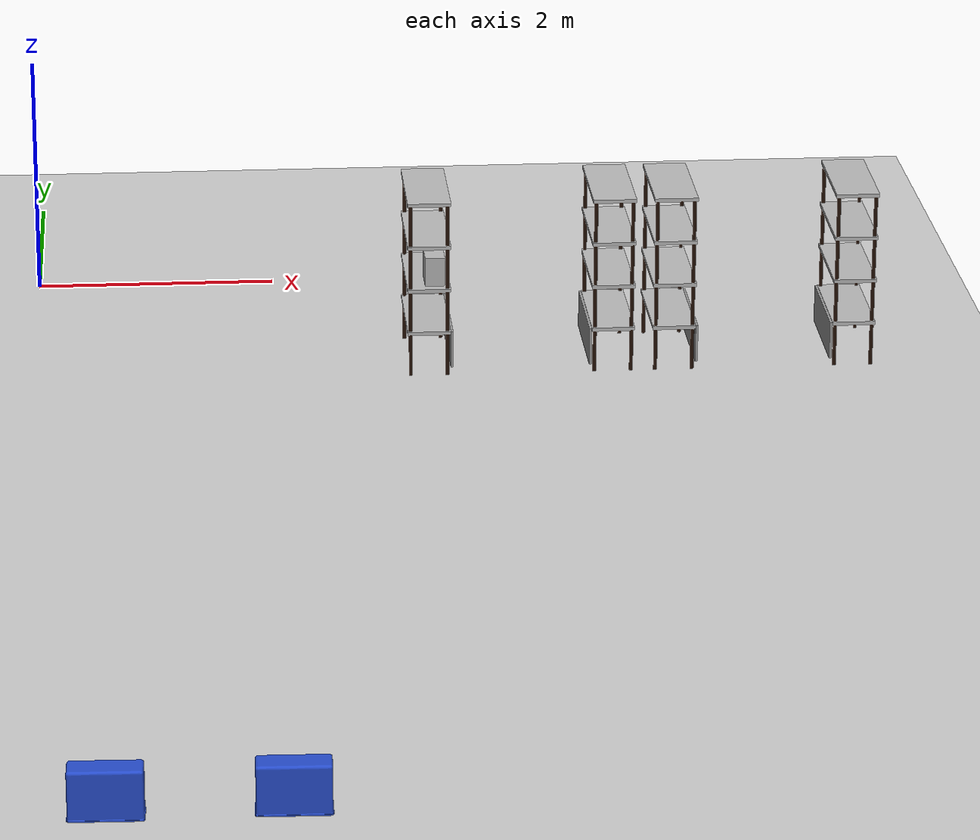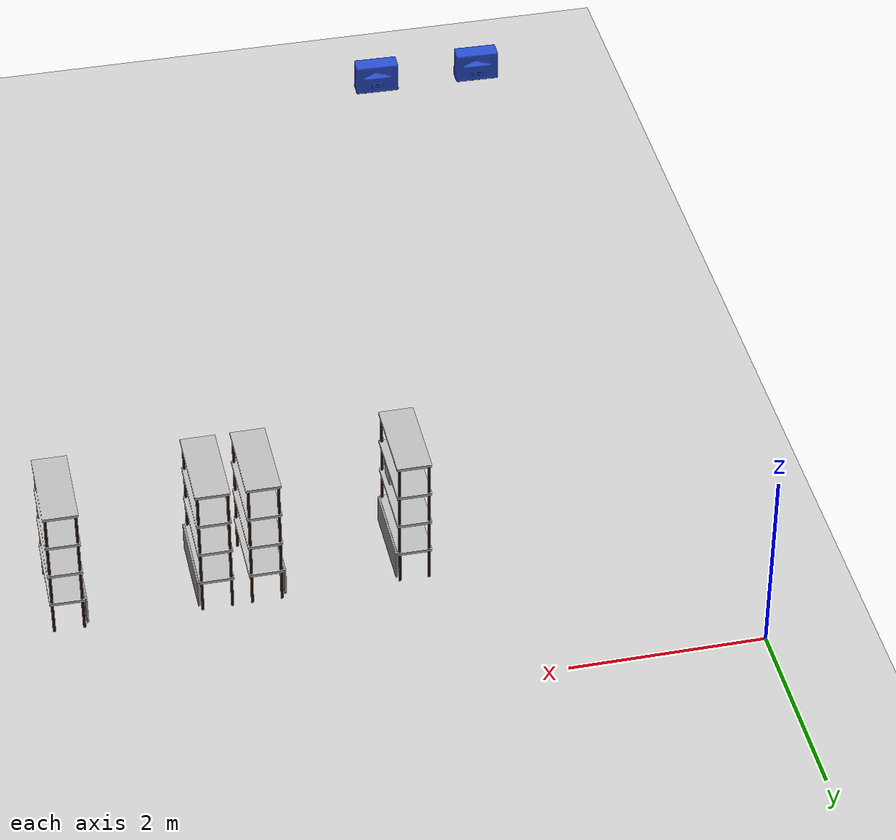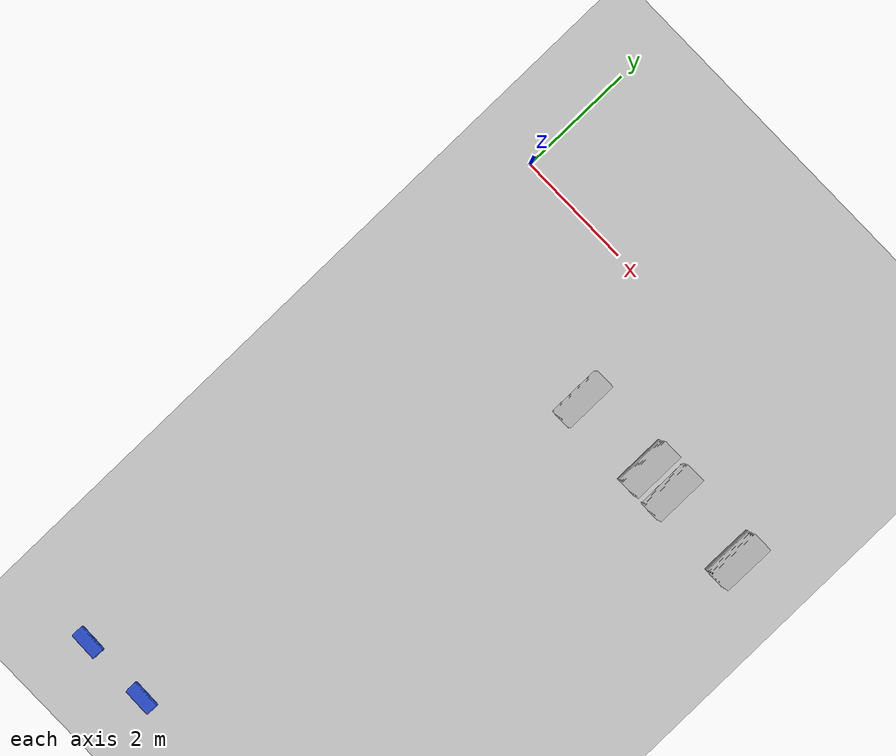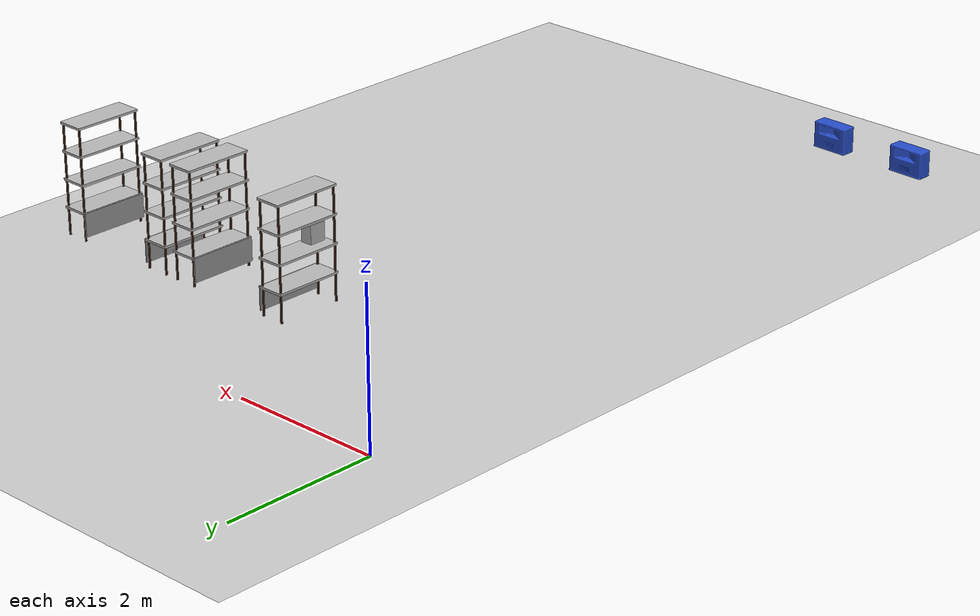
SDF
<sdf version="1.7">
 <world name="default">
  <model name="ground_plane">
   <static>1</static>
   <link name="link">
    <collision name="collision">
     <geometry><plane><normal>0 0 1</normal><size>100 100</size></plane></geometry>
     <surface><friction><ode><mu>100</mu><mu2>50</mu2></ode></friction></surface>
    </collision>
    <visual name="visual">
     <cast_shadows>0</cast_shadows>
     <geometry><plane><normal>0 0 1</normal><size>100 100</size></plane></geometry>
     <material>
      <script><uri>file://media/materials/scripts/gazebo.material</uri><name>Gazebo/Grey</name></script>
     </material>
    </visual>
   </link>
  </model>
  <model name="rack">
   <link name="link">
    <inertial>
     <mass>0.1</mass>
     <inertia><ixx>0.01857</ixx><ixy>0</ixy><ixz>0</ixz><iyy>0.015598</iyy><iyz>0</iyz><izz>0.00305</izz></inertia>
    </inertial>
    <visual name="visual1">
     <cast_shadows>0</cast_shadows>
     <geometry><mesh><uri>model://rack/meshes/rack.dae</uri></mesh></geometry>
     <material>
      <shader type="pixel"><normal_map>__default__</normal_map></shader>
      <emissive>0 0 0 1</emissive>
     </material>
    </visual>
    <visual name="visual_2">
     <cast_shadows>0</cast_shadows>
     <geometry><box><size>0.02 0.9 0.31</size></box></geometry>
     <material>
      <lighting>1</lighting>
      <script><uri>file://media/materials/scripts/gazebo.material</uri><name>Gazebo/Grey</name></script>
      <shader type="pixel"><normal_map>__default__</normal_map></shader>
      <ambient>0.3 0.3 0.3 1</ambient>
      <diffuse>0.7 0.7 0.7 1</diffuse>
      <specular>0.01 0.01 0.01 1</specular>
      <emissive>0 0 0 1</emissive>
     </material>
     <pose>-0.185 0 0.22 0 -0 0</pose>
    </visual>
    <collision name="collision_7">
     <pose>0 0 0.36 0 1.57 1.57</pose>
     <geometry><box><size>0.05 0.35 0.91</size></box></geometry>
     <surface>
      <friction>
       <ode><mu>1</mu><mu2>1</mu2><fdir1>0 0 0</fdir1><slip1>0</slip1><slip2>0</slip2></ode>
       <torsional>
        <coefficient>1</coefficient>
        <patch_radius>0</patch_radius>
        <surface_radius>0</surface_radius>
        <use_patch_radius>1</use_patch_radius>
        <ode><slip>0</slip></ode>
       </torsional>
      </friction>
      <bounce><restitution_coefficient>0</restitution_coefficient><threshold>1e+06</threshold></bounce>
      <contact>
       <collide_without_contact>0</collide_without_contact>
       <collide_without_contact_bitmask>1</collide_without_contact_bitmask>
       <collide_bitmask>1</collide_bitmask>
       <ode>
        <soft_cfm>0</soft_cfm>
        <soft_erp>0.2</soft_erp>
        <kp>1e+15</kp>
        <kd>1e+13</kd>
        <max_vel>0.01</max_vel>
        <min_depth>0</min_depth>
       </ode>
       <bullet>
        <split_impulse>1</split_impulse>
        <split_impulse_penetration_threshold>-0.01</split_impulse_penetration_threshold>
        <soft_cfm>0</soft_cfm>
        <soft_erp>0.2</soft_erp>
        <kp>1e+13</kp>
        <kd>1</kd>
       </bullet>
      </contact>
     </surface>
    </collision>
    <collision name="collision_6">
     <pose>0 0 0.725 0 1.57 1.57</pose>
     <geometry><box><size>0.05 0.35 0.91</size></box></geometry>
     <surface>
      <friction>
       <ode><mu>1</mu><mu2>1</mu2><fdir1>0 0 0</fdir1><slip1>0</slip1><slip2>0</slip2></ode>
       <torsional>
        <coefficient>1</coefficient>
        <patch_radius>0</patch_radius>
        <surface_radius>0</surface_radius>
        <use_patch_radius>1</use_patch_radius>
        <ode><slip>0</slip></ode>
       </torsional>
      </friction>
      <bounce><restitution_coefficient>0</restitution_coefficient><threshold>1e+06</threshold></bounce>
      <contact>
       <collide_without_contact>0</collide_without_contact>
       <collide_without_contact_bitmask>1</collide_without_contact_bitmask>
       <collide_bitmask>1</collide_bitmask>
       <ode>
        <soft_cfm>0</soft_cfm>
        <soft_erp>0.2</soft_erp>
        <kp>1e+15</kp>
        <kd>1e+13</kd>
        <max_vel>0.01</max_vel>
        <min_depth>0</min_depth>
       </ode>
       <bullet>
        <split_impulse>1</split_impulse>
        <split_impulse_penetration_threshold>-0.01</split_impulse_penetration_threshold>
        <soft_cfm>0</soft_cfm>
        <soft_erp>0.2</soft_erp>
        <kp>1e+13</kp>
        <kd>1</kd>
       </bullet>
      </contact>
     </surface>
    </collision>
    <collision name="collision_5">
     <pose>0 0 1.09 0 1.57 1.57</pose>
     <geometry><box><size>0.05 0.35 0.91</size></box></geometry>
     <surface>
      <friction>
       <ode><mu>1</mu><mu2>1</mu2><fdir1>0 0 0</fdir1><slip1>0</slip1><slip2>0</slip2></ode>
       <torsional>
        <coefficient>1</coefficient>
        <patch_radius>0</patch_radius>
        <surface_radius>0</surface_radius>
        <use_patch_radius>1</use_patch_radius>
        <ode><slip>0</slip></ode>
       </torsional>
      </friction>
      <bounce><restitution_coefficient>0</restitution_coefficient><threshold>1e+06</threshold></bounce>
      <contact>
       <collide_without_contact>0</collide_without_contact>
       <collide_without_contact_bitmask>1</collide_without_contact_bitmask>
       <collide_bitmask>1</collide_bitmask>
       <ode>
        <soft_cfm>0</soft_cfm>
        <soft_erp>0.2</soft_erp>
        <kp>1e+15</kp>
        <kd>1e+13</kd>
        <max_vel>0.01</max_vel>
        <min_depth>0</min_depth>
       </ode>
       <bullet>
        <split_impulse>1</split_impulse>
        <split_impulse_penetration_threshold>-0.01</split_impulse_penetration_threshold>
        <soft_cfm>0</soft_cfm>
        <soft_erp>0.2</soft_erp>
        <kp>1e+13</kp>
        <kd>1</kd>
       </bullet>
      </contact>
     </surface>
    </collision>
    <collision name="collision_3">
     <pose>0 0 1.455 0 1.57 1.57</pose>
     <geometry><box><size>0.05 0.35 0.91</size></box></geometry>
     <surface>
      <friction>
       <ode><mu>1</mu><mu2>1</mu2><fdir1>0 0 0</fdir1><slip1>0</slip1><slip2>0</slip2></ode>
       <torsional>
        <coefficient>1</coefficient>
        <patch_radius>0</patch_radius>
        <surface_radius>0</surface_radius>
        <use_patch_radius>1</use_patch_radius>
        <ode><slip>0</slip></ode>
       </torsional>
      </friction>
      <bounce><restitution_coefficient>0</restitution_coefficient><threshold>1e+06</threshold></bounce>
      <contact>
       <collide_without_contact>0</collide_without_contact>
       <collide_without_contact_bitmask>1</collide_without_contact_bitmask>
       <collide_bitmask>1</collide_bitmask>
       <ode>
        <soft_cfm>0</soft_cfm>
        <soft_erp>0.2</soft_erp>
        <kp>1e+15</kp>
        <kd>1e+13</kd>
        <max_vel>0.01</max_vel>
        <min_depth>0</min_depth>
       </ode>
       <bullet>
        <split_impulse>1</split_impulse>
        <split_impulse_penetration_threshold>-0.01</split_impulse_penetration_threshold>
        <soft_cfm>0</soft_cfm>
        <soft_erp>0.2</soft_erp>
        <kp>1e+13</kp>
        <kd>1</kd>
       </bullet>
      </contact>
     </surface>
    </collision>
    <collision name="collision_1">
     <pose>0 0.43 0.73 0 -0 1.57</pose>
     <geometry><box><size>0.05 0.36 1.46</size></box></geometry>
     <surface>
      <friction>
       <ode><mu>1</mu><mu2>1</mu2><fdir1>0 0 0</fdir1><slip1>0</slip1><slip2>0</slip2></ode>
       <torsional>
        <coefficient>1</coefficient>
        <patch_radius>0</patch_radius>
        <surface_radius>0</surface_radius>
        <use_patch_radius>1</use_patch_radius>
        <ode><slip>0</slip></ode>
       </torsional>
      </friction>
      <bounce><restitution_coefficient>0</restitution_coefficient><threshold>1e+06</threshold></bounce>
      <contact>
       <collide_without_contact>0</collide_without_contact>
       <collide_without_contact_bitmask>1</collide_without_contact_bitmask>
       <collide_bitmask>1</collide_bitmask>
       <ode>
        <soft_cfm>0</soft_cfm>
        <soft_erp>0.2</soft_erp>
        <kp>1e+15</kp>
        <kd>1e+13</kd>
        <max_vel>0.01</max_vel>
        <min_depth>0</min_depth>
       </ode>
       <bullet>
        <split_impulse>1</split_impulse>
        <split_impulse_penetration_threshold>-0.01</split_impulse_penetration_threshold>
        <soft_cfm>0</soft_cfm>
        <soft_erp>0.2</soft_erp>
        <kp>1e+13</kp>
        <kd>1</kd>
       </bullet>
      </contact>
     </surface>
    </collision>
    <collision name="collision_2">
     <pose>0 -0.43 0.73 0 -0 1.57</pose>
     <geometry><box><size>0.05 0.36 1.46</size></box></geometry>
     <surface>
      <friction>
       <ode><mu>1</mu><mu2>1</mu2><fdir1>0 0 0</fdir1><slip1>0</slip1><slip2>0</slip2></ode>
       <torsional>
        <coefficient>1</coefficient>
        <patch_radius>0</patch_radius>
        <surface_radius>0</surface_radius>
        <use_patch_radius>1</use_patch_radius>
        <ode><slip>0</slip></ode>
       </torsional>
      </friction>
      <bounce><restitution_coefficient>0</restitution_coefficient><threshold>1e+06</threshold></bounce>
      <contact>
       <collide_without_contact>0</collide_without_contact>
       <collide_without_contact_bitmask>1</collide_without_contact_bitmask>
       <collide_bitmask>1</collide_bitmask>
       <ode>
        <soft_cfm>0</soft_cfm>
        <soft_erp>0.2</soft_erp>
        <kp>1e+15</kp>
        <kd>1e+13</kd>
        <max_vel>0.01</max_vel>
        <min_depth>0</min_depth>
       </ode>
       <bullet>
        <split_impulse>1</split_impulse>
        <split_impulse_penetration_threshold>-0.01</split_impulse_penetration_threshold>
        <soft_cfm>0</soft_cfm>
        <soft_erp>0.2</soft_erp>
        <kp>1e+13</kp>
        <kd>1</kd>
       </bullet>
      </contact>
     </surface>
    </collision>
    <collision name="collision">
     <pose>-0.185 0 0.22 0 -0 0</pose>
     <geometry><box><size>0.02 0.9 0.31</size></box></geometry>
     <surface>
      <friction>
       <ode><mu>1</mu><mu2>1</mu2><fdir1>0 0 0</fdir1><slip1>0</slip1><slip2>0</slip2></ode>
       <torsional>
        <coefficient>1</coefficient>
        <patch_radius>0</patch_radius>
        <surface_radius>0</surface_radius>
        <use_patch_radius>1</use_patch_radius>
        <ode><slip>0</slip></ode>
       </torsional>
      </friction>
      <bounce><restitution_coefficient>0</restitution_coefficient><threshold>1e+06</threshold></bounce>
      <contact>
       <collide_without_contact>0</collide_without_contact>
       <collide_without_contact_bitmask>1</collide_without_contact_bitmask>
       <collide_bitmask>1</collide_bitmask>
       <ode>
        <soft_cfm>0</soft_cfm>
        <soft_erp>0.2</soft_erp>
        <kp>1e+15</kp>
        <kd>1e+13</kd>
        <max_vel>0.01</max_vel>
        <min_depth>0</min_depth>
       </ode>
       <bullet>
        <split_impulse>1</split_impulse>
        <split_impulse_penetration_threshold>-0.01</split_impulse_penetration_threshold>
        <soft_cfm>0</soft_cfm>
        <soft_erp>0.2</soft_erp>
        <kp>1e+13</kp>
        <kd>1</kd>
       </bullet>
      </contact>
     </surface>
    </collision>
   </link>
   <static>0</static>
   <pose>6.67799 -1.99962 0.033266 -0.001943 0.000242 -0.010784</pose>
  </model>
  <model name="rack_6">
   <link name="link">
    <inertial>
     <mass>0.1</mass>
     <inertia><ixx>0.01857</ixx><ixy>0</ixy><ixz>0</ixz><iyy>0.015598</iyy><iyz>0</iyz><izz>0.00305</izz></inertia>
    </inertial>
    <visual name="visual1">
     <cast_shadows>0</cast_shadows>
     <geometry><mesh><uri>model://rack/meshes/rack.dae</uri></mesh></geometry>
     <material>
      <shader type="pixel"><normal_map>__default__</normal_map></shader>
      <emissive>0 0 0 1</emissive>
     </material>
    </visual>
    <visual name="visual_2">
     <cast_shadows>0</cast_shadows>
     <geometry><box><size>0.02 0.9 0.31</size></box></geometry>
     <material>
      <lighting>1</lighting>
      <script><uri>file://media/materials/scripts/gazebo.material</uri><name>Gazebo/Grey</name></script>
      <shader type="pixel"><normal_map>__default__</normal_map></shader>
      <ambient>0.3 0.3 0.3 1</ambient>
      <diffuse>0.7 0.7 0.7 1</diffuse>
      <specular>0.01 0.01 0.01 1</specular>
      <emissive>0 0 0 1</emissive>
     </material>
     <pose>-0.185 0 0.22 0 -0 0</pose>
    </visual>
    <collision name="collision_7">
     <pose>0 0 0.36 0 1.57 1.57</pose>
     <geometry><box><size>0.05 0.35 0.91</size></box></geometry>
     <surface>
      <friction>
       <ode><mu>1</mu><mu2>1</mu2><fdir1>0 0 0</fdir1><slip1>0</slip1><slip2>0</slip2></ode>
       <torsional>
        <coefficient>1</coefficient>
        <patch_radius>0</patch_radius>
        <surface_radius>0</surface_radius>
        <use_patch_radius>1</use_patch_radius>
        <ode><slip>0</slip></ode>
       </torsional>
      </friction>
      <bounce><restitution_coefficient>0</restitution_coefficient><threshold>1e+06</threshold></bounce>
      <contact>
       <collide_without_contact>0</collide_without_contact>
       <collide_without_contact_bitmask>1</collide_without_contact_bitmask>
       <collide_bitmask>1</collide_bitmask>
       <ode>
        <soft_cfm>0</soft_cfm>
        <soft_erp>0.2</soft_erp>
        <kp>1e+15</kp>
        <kd>1e+13</kd>
        <max_vel>0.01</max_vel>
        <min_depth>0</min_depth>
       </ode>
       <bullet>
        <split_impulse>1</split_impulse>
        <split_impulse_penetration_threshold>-0.01</split_impulse_penetration_threshold>
        <soft_cfm>0</soft_cfm>
        <soft_erp>0.2</soft_erp>
        <kp>1e+13</kp>
        <kd>1</kd>
       </bullet>
      </contact>
     </surface>
    </collision>
    <collision name="collision_6">
     <pose>0 0 0.725 0 1.57 1.57</pose>
     <geometry><box><size>0.05 0.35 0.91</size></box></geometry>
     <surface>
      <friction>
       <ode><mu>1</mu><mu2>1</mu2><fdir1>0 0 0</fdir1><slip1>0</slip1><slip2>0</slip2></ode>
       <torsional>
        <coefficient>1</coefficient>
        <patch_radius>0</patch_radius>
        <surface_radius>0</surface_radius>
        <use_patch_radius>1</use_patch_radius>
        <ode><slip>0</slip></ode>
       </torsional>
      </friction>
      <bounce><restitution_coefficient>0</restitution_coefficient><threshold>1e+06</threshold></bounce>
      <contact>
       <collide_without_contact>0</collide_without_contact>
       <collide_without_contact_bitmask>1</collide_without_contact_bitmask>
       <collide_bitmask>1</collide_bitmask>
       <ode>
        <soft_cfm>0</soft_cfm>
        <soft_erp>0.2</soft_erp>
        <kp>1e+15</kp>
        <kd>1e+13</kd>
        <max_vel>0.01</max_vel>
        <min_depth>0</min_depth>
       </ode>
       <bullet>
        <split_impulse>1</split_impulse>
        <split_impulse_penetration_threshold>-0.01</split_impulse_penetration_threshold>
        <soft_cfm>0</soft_cfm>
        <soft_erp>0.2</soft_erp>
        <kp>1e+13</kp>
        <kd>1</kd>
       </bullet>
      </contact>
     </surface>
    </collision>
    <collision name="collision_5">
     <pose>0 0 1.09 0 1.57 1.57</pose>
     <geometry><box><size>0.05 0.35 0.91</size></box></geometry>
     <surface>
      <friction>
       <ode><mu>1</mu><mu2>1</mu2><fdir1>0 0 0</fdir1><slip1>0</slip1><slip2>0</slip2></ode>
       <torsional>
        <coefficient>1</coefficient>
        <patch_radius>0</patch_radius>
        <surface_radius>0</surface_radius>
        <use_patch_radius>1</use_patch_radius>
        <ode><slip>0</slip></ode>
       </torsional>
      </friction>
      <bounce><restitution_coefficient>0</restitution_coefficient><threshold>1e+06</threshold></bounce>
      <contact>
       <collide_without_contact>0</collide_without_contact>
       <collide_without_contact_bitmask>1</collide_without_contact_bitmask>
       <collide_bitmask>1</collide_bitmask>
       <ode>
        <soft_cfm>0</soft_cfm>
        <soft_erp>0.2</soft_erp>
        <kp>1e+15</kp>
        <kd>1e+13</kd>
        <max_vel>0.01</max_vel>
        <min_depth>0</min_depth>
       </ode>
       <bullet>
        <split_impulse>1</split_impulse>
        <split_impulse_penetration_threshold>-0.01</split_impulse_penetration_threshold>
        <soft_cfm>0</soft_cfm>
        <soft_erp>0.2</soft_erp>
        <kp>1e+13</kp>
        <kd>1</kd>
       </bullet>
      </contact>
     </surface>
    </collision>
    <collision name="collision_3">
     <pose>0 0 1.455 0 1.57 1.57</pose>
     <geometry><box><size>0.05 0.35 0.91</size></box></geometry>
     <surface>
      <friction>
       <ode><mu>1</mu><mu2>1</mu2><fdir1>0 0 0</fdir1><slip1>0</slip1><slip2>0</slip2></ode>
       <torsional>
        <coefficient>1</coefficient>
        <patch_radius>0</patch_radius>
        <surface_radius>0</surface_radius>
        <use_patch_radius>1</use_patch_radius>
        <ode><slip>0</slip></ode>
       </torsional>
      </friction>
      <bounce><restitution_coefficient>0</restitution_coefficient><threshold>1e+06</threshold></bounce>
      <contact>
       <collide_without_contact>0</collide_without_contact>
       <collide_without_contact_bitmask>1</collide_without_contact_bitmask>
       <collide_bitmask>1</collide_bitmask>
       <ode>
        <soft_cfm>0</soft_cfm>
        <soft_erp>0.2</soft_erp>
        <kp>1e+15</kp>
        <kd>1e+13</kd>
        <max_vel>0.01</max_vel>
        <min_depth>0</min_depth>
       </ode>
       <bullet>
        <split_impulse>1</split_impulse>
        <split_impulse_penetration_threshold>-0.01</split_impulse_penetration_threshold>
        <soft_cfm>0</soft_cfm>
        <soft_erp>0.2</soft_erp>
        <kp>1e+13</kp>
        <kd>1</kd>
       </bullet>
      </contact>
     </surface>
    </collision>
    <collision name="collision_1">
     <pose>0 0.43 0.73 0 -0 1.57</pose>
     <geometry><box><size>0.05 0.36 1.46</size></box></geometry>
     <surface>
      <friction>
       <ode><mu>1</mu><mu2>1</mu2><fdir1>0 0 0</fdir1><slip1>0</slip1><slip2>0</slip2></ode>
       <torsional>
        <coefficient>1</coefficient>
        <patch_radius>0</patch_radius>
        <surface_radius>0</surface_radius>
        <use_patch_radius>1</use_patch_radius>
        <ode><slip>0</slip></ode>
       </torsional>
      </friction>
      <bounce><restitution_coefficient>0</restitution_coefficient><threshold>1e+06</threshold></bounce>
      <contact>
       <collide_without_contact>0</collide_without_contact>
       <collide_without_contact_bitmask>1</collide_without_contact_bitmask>
       <collide_bitmask>1</collide_bitmask>
       <ode>
        <soft_cfm>0</soft_cfm>
        <soft_erp>0.2</soft_erp>
        <kp>1e+15</kp>
        <kd>1e+13</kd>
        <max_vel>0.01</max_vel>
        <min_depth>0</min_depth>
       </ode>
       <bullet>
        <split_impulse>1</split_impulse>
        <split_impulse_penetration_threshold>-0.01</split_impulse_penetration_threshold>
        <soft_cfm>0</soft_cfm>
        <soft_erp>0.2</soft_erp>
        <kp>1e+13</kp>
        <kd>1</kd>
       </bullet>
      </contact>
     </surface>
    </collision>
    <collision name="collision_2">
     <pose>0 -0.43 0.73 0 -0 1.57</pose>
     <geometry><box><size>0.05 0.36 1.46</size></box></geometry>
     <surface>
      <friction>
       <ode><mu>1</mu><mu2>1</mu2><fdir1>0 0 0</fdir1><slip1>0</slip1><slip2>0</slip2></ode>
       <torsional>
        <coefficient>1</coefficient>
        <patch_radius>0</patch_radius>
        <surface_radius>0</surface_radius>
        <use_patch_radius>1</use_patch_radius>
        <ode><slip>0</slip></ode>
       </torsional>
      </friction>
      <bounce><restitution_coefficient>0</restitution_coefficient><threshold>1e+06</threshold></bounce>
      <contact>
       <collide_without_contact>0</collide_without_contact>
       <collide_without_contact_bitmask>1</collide_without_contact_bitmask>
       <collide_bitmask>1</collide_bitmask>
       <ode>
        <soft_cfm>0</soft_cfm>
        <soft_erp>0.2</soft_erp>
        <kp>1e+15</kp>
        <kd>1e+13</kd>
        <max_vel>0.01</max_vel>
        <min_depth>0</min_depth>
       </ode>
       <bullet>
        <split_impulse>1</split_impulse>
        <split_impulse_penetration_threshold>-0.01</split_impulse_penetration_threshold>
        <soft_cfm>0</soft_cfm>
        <soft_erp>0.2</soft_erp>
        <kp>1e+13</kp>
        <kd>1</kd>
       </bullet>
      </contact>
     </surface>
    </collision>
    <collision name="collision">
     <pose>-0.185 0 0.22 0 -0 0</pose>
     <geometry><box><size>0.02 0.9 0.31</size></box></geometry>
     <surface>
      <friction>
       <ode><mu>1</mu><mu2>1</mu2><fdir1>0 0 0</fdir1><slip1>0</slip1><slip2>0</slip2></ode>
       <torsional>
        <coefficient>1</coefficient>
        <patch_radius>0</patch_radius>
        <surface_radius>0</surface_radius>
        <use_patch_radius>1</use_patch_radius>
        <ode><slip>0</slip></ode>
       </torsional>
      </friction>
      <bounce><restitution_coefficient>0</restitution_coefficient><threshold>1e+06</threshold></bounce>
      <contact>
       <collide_without_contact>0</collide_without_contact>
       <collide_without_contact_bitmask>1</collide_without_contact_bitmask>
       <collide_bitmask>1</collide_bitmask>
       <ode>
        <soft_cfm>0</soft_cfm>
        <soft_erp>0.2</soft_erp>
        <kp>1e+15</kp>
        <kd>1e+13</kd>
        <max_vel>0.01</max_vel>
        <min_depth>0</min_depth>
       </ode>
       <bullet>
        <split_impulse>1</split_impulse>
        <split_impulse_penetration_threshold>-0.01</split_impulse_penetration_threshold>
        <soft_cfm>0</soft_cfm>
        <soft_erp>0.2</soft_erp>
        <kp>1e+13</kp>
        <kd>1</kd>
       </bullet>
      </contact>
     </surface>
    </collision>
   </link>
   <static>0</static>
   <pose>5.2 -2 0.034223 0 -0 3.14</pose>
  </model>
  <model name="rack_10">
   <link name="link">
    <inertial>
     <mass>0.1</mass>
     <inertia><ixx>0.01857</ixx><ixy>0</ixy><ixz>0</ixz><iyy>0.015598</iyy><iyz>0</iyz><izz>0.00305</izz></inertia>
    </inertial>
    <visual name="visual1">
     <cast_shadows>0</cast_shadows>
     <geometry><mesh><uri>model://rack/meshes/rack.dae</uri></mesh></geometry>
     <material>
      <shader type="pixel"><normal_map>__default__</normal_map></shader>
      <emissive>0 0 0 1</emissive>
     </material>
    </visual>
    <visual name="visual_2">
     <cast_shadows>0</cast_shadows>
     <geometry><box><size>0.02 0.9 0.31</size></box></geometry>
     <material>
      <lighting>1</lighting>
      <script><uri>file://media/materials/scripts/gazebo.material</uri><name>Gazebo/Grey</name></script>
      <shader type="pixel"><normal_map>__default__</normal_map></shader>
      <ambient>0.3 0.3 0.3 1</ambient>
      <diffuse>0.7 0.7 0.7 1</diffuse>
      <specular>0.01 0.01 0.01 1</specular>
      <emissive>0 0 0 1</emissive>
     </material>
     <pose>-0.185 0 0.22 0 -0 0</pose>
    </visual>
    <collision name="collision_7">
     <pose>0 0 0.36 0 1.57 1.57</pose>
     <geometry><box><size>0.05 0.35 0.91</size></box></geometry>
     <surface>
      <friction>
       <ode><mu>1</mu><mu2>1</mu2><fdir1>0 0 0</fdir1><slip1>0</slip1><slip2>0</slip2></ode>
       <torsional>
        <coefficient>1</coefficient>
        <patch_radius>0</patch_radius>
        <surface_radius>0</surface_radius>
        <use_patch_radius>1</use_patch_radius>
        <ode><slip>0</slip></ode>
       </torsional>
      </friction>
      <bounce><restitution_coefficient>0</restitution_coefficient><threshold>1e+06</threshold></bounce>
      <contact>
       <collide_without_contact>0</collide_without_contact>
       <collide_without_contact_bitmask>1</collide_without_contact_bitmask>
       <collide_bitmask>1</collide_bitmask>
       <ode>
        <soft_cfm>0</soft_cfm>
        <soft_erp>0.2</soft_erp>
        <kp>1e+15</kp>
        <kd>1e+13</kd>
        <max_vel>0.01</max_vel>
        <min_depth>0</min_depth>
       </ode>
       <bullet>
        <split_impulse>1</split_impulse>
        <split_impulse_penetration_threshold>-0.01</split_impulse_penetration_threshold>
        <soft_cfm>0</soft_cfm>
        <soft_erp>0.2</soft_erp>
        <kp>1e+13</kp>
        <kd>1</kd>
       </bullet>
      </contact>
     </surface>
    </collision>
    <collision name="collision_6">
     <pose>0 0 0.725 0 1.57 1.57</pose>
     <geometry><box><size>0.05 0.35 0.91</size></box></geometry>
     <surface>
      <friction>
       <ode><mu>1</mu><mu2>1</mu2><fdir1>0 0 0</fdir1><slip1>0</slip1><slip2>0</slip2></ode>
       <torsional>
        <coefficient>1</coefficient>
        <patch_radius>0</patch_radius>
        <surface_radius>0</surface_radius>
        <use_patch_radius>1</use_patch_radius>
        <ode><slip>0</slip></ode>
       </torsional>
      </friction>
      <bounce><restitution_coefficient>0</restitution_coefficient><threshold>1e+06</threshold></bounce>
      <contact>
       <collide_without_contact>0</collide_without_contact>
       <collide_without_contact_bitmask>1</collide_without_contact_bitmask>
       <collide_bitmask>1</collide_bitmask>
       <ode>
        <soft_cfm>0</soft_cfm>
        <soft_erp>0.2</soft_erp>
        <kp>1e+15</kp>
        <kd>1e+13</kd>
        <max_vel>0.01</max_vel>
        <min_depth>0</min_depth>
       </ode>
       <bullet>
        <split_impulse>1</split_impulse>
        <split_impulse_penetration_threshold>-0.01</split_impulse_penetration_threshold>
        <soft_cfm>0</soft_cfm>
        <soft_erp>0.2</soft_erp>
        <kp>1e+13</kp>
        <kd>1</kd>
       </bullet>
      </contact>
     </surface>
    </collision>
    <collision name="collision_5">
     <pose>0 0 1.09 0 1.57 1.57</pose>
     <geometry><box><size>0.05 0.35 0.91</size></box></geometry>
     <surface>
      <friction>
       <ode><mu>1</mu><mu2>1</mu2><fdir1>0 0 0</fdir1><slip1>0</slip1><slip2>0</slip2></ode>
       <torsional>
        <coefficient>1</coefficient>
        <patch_radius>0</patch_radius>
        <surface_radius>0</surface_radius>
        <use_patch_radius>1</use_patch_radius>
        <ode><slip>0</slip></ode>
       </torsional>
      </friction>
      <bounce><restitution_coefficient>0</restitution_coefficient><threshold>1e+06</threshold></bounce>
      <contact>
       <collide_without_contact>0</collide_without_contact>
       <collide_without_contact_bitmask>1</collide_without_contact_bitmask>
       <collide_bitmask>1</collide_bitmask>
       <ode>
        <soft_cfm>0</soft_cfm>
        <soft_erp>0.2</soft_erp>
        <kp>1e+15</kp>
        <kd>1e+13</kd>
        <max_vel>0.01</max_vel>
        <min_depth>0</min_depth>
       </ode>
       <bullet>
        <split_impulse>1</split_impulse>
        <split_impulse_penetration_threshold>-0.01</split_impulse_penetration_threshold>
        <soft_cfm>0</soft_cfm>
        <soft_erp>0.2</soft_erp>
        <kp>1e+13</kp>
        <kd>1</kd>
       </bullet>
      </contact>
     </surface>
    </collision>
    <collision name="collision_3">
     <pose>0 0 1.455 0 1.57 1.57</pose>
     <geometry><box><size>0.05 0.35 0.91</size></box></geometry>
     <surface>
      <friction>
       <ode><mu>1</mu><mu2>1</mu2><fdir1>0 0 0</fdir1><slip1>0</slip1><slip2>0</slip2></ode>
       <torsional>
        <coefficient>1</coefficient>
        <patch_radius>0</patch_radius>
        <surface_radius>0</surface_radius>
        <use_patch_radius>1</use_patch_radius>
        <ode><slip>0</slip></ode>
       </torsional>
      </friction>
      <bounce><restitution_coefficient>0</restitution_coefficient><threshold>1e+06</threshold></bounce>
      <contact>
       <collide_without_contact>0</collide_without_contact>
       <collide_without_contact_bitmask>1</collide_without_contact_bitmask>
       <collide_bitmask>1</collide_bitmask>
       <ode>
        <soft_cfm>0</soft_cfm>
        <soft_erp>0.2</soft_erp>
        <kp>1e+15</kp>
        <kd>1e+13</kd>
        <max_vel>0.01</max_vel>
        <min_depth>0</min_depth>
       </ode>
       <bullet>
        <split_impulse>1</split_impulse>
        <split_impulse_penetration_threshold>-0.01</split_impulse_penetration_threshold>
        <soft_cfm>0</soft_cfm>
        <soft_erp>0.2</soft_erp>
        <kp>1e+13</kp>
        <kd>1</kd>
       </bullet>
      </contact>
     </surface>
    </collision>
    <collision name="collision_1">
     <pose>0 0.43 0.73 0 -0 1.57</pose>
     <geometry><box><size>0.05 0.36 1.46</size></box></geometry>
     <surface>
      <friction>
       <ode><mu>1</mu><mu2>1</mu2><fdir1>0 0 0</fdir1><slip1>0</slip1><slip2>0</slip2></ode>
       <torsional>
        <coefficient>1</coefficient>
        <patch_radius>0</patch_radius>
        <surface_radius>0</surface_radius>
        <use_patch_radius>1</use_patch_radius>
        <ode><slip>0</slip></ode>
       </torsional>
      </friction>
      <bounce><restitution_coefficient>0</restitution_coefficient><threshold>1e+06</threshold></bounce>
      <contact>
       <collide_without_contact>0</collide_without_contact>
       <collide_without_contact_bitmask>1</collide_without_contact_bitmask>
       <collide_bitmask>1</collide_bitmask>
       <ode>
        <soft_cfm>0</soft_cfm>
        <soft_erp>0.2</soft_erp>
        <kp>1e+15</kp>
        <kd>1e+13</kd>
        <max_vel>0.01</max_vel>
        <min_depth>0</min_depth>
       </ode>
       <bullet>
        <split_impulse>1</split_impulse>
        <split_impulse_penetration_threshold>-0.01</split_impulse_penetration_threshold>
        <soft_cfm>0</soft_cfm>
        <soft_erp>0.2</soft_erp>
        <kp>1e+13</kp>
        <kd>1</kd>
       </bullet>
      </contact>
     </surface>
    </collision>
    <collision name="collision_2">
     <pose>0 -0.43 0.73 0 -0 1.57</pose>
     <geometry><box><size>0.05 0.36 1.46</size></box></geometry>
     <surface>
      <friction>
       <ode><mu>1</mu><mu2>1</mu2><fdir1>0 0 0</fdir1><slip1>0</slip1><slip2>0</slip2></ode>
       <torsional>
        <coefficient>1</coefficient>
        <patch_radius>0</patch_radius>
        <surface_radius>0</surface_radius>
        <use_patch_radius>1</use_patch_radius>
        <ode><slip>0</slip></ode>
       </torsional>
      </friction>
      <bounce><restitution_coefficient>0</restitution_coefficient><threshold>1e+06</threshold></bounce>
      <contact>
       <collide_without_contact>0</collide_without_contact>
       <collide_without_contact_bitmask>1</collide_without_contact_bitmask>
       <collide_bitmask>1</collide_bitmask>
       <ode>
        <soft_cfm>0</soft_cfm>
        <soft_erp>0.2</soft_erp>
        <kp>1e+15</kp>
        <kd>1e+13</kd>
        <max_vel>0.01</max_vel>
        <min_depth>0</min_depth>
       </ode>
       <bullet>
        <split_impulse>1</split_impulse>
        <split_impulse_penetration_threshold>-0.01</split_impulse_penetration_threshold>
        <soft_cfm>0</soft_cfm>
        <soft_erp>0.2</soft_erp>
        <kp>1e+13</kp>
        <kd>1</kd>
       </bullet>
      </contact>
     </surface>
    </collision>
    <collision name="collision">
     <pose>-0.185 0 0.22 0 -0 0</pose>
     <geometry><box><size>0.02 0.9 0.31</size></box></geometry>
     <surface>
      <friction>
       <ode><mu>1</mu><mu2>1</mu2><fdir1>0 0 0</fdir1><slip1>0</slip1><slip2>0</slip2></ode>
       <torsional>
        <coefficient>1</coefficient>
        <patch_radius>0</patch_radius>
        <surface_radius>0</surface_radius>
        <use_patch_radius>1</use_patch_radius>
        <ode><slip>0</slip></ode>
       </torsional>
      </friction>
      <bounce><restitution_coefficient>0</restitution_coefficient><threshold>1e+06</threshold></bounce>
      <contact>
       <collide_without_contact>0</collide_without_contact>
       <collide_without_contact_bitmask>1</collide_without_contact_bitmask>
       <collide_bitmask>1</collide_bitmask>
       <ode>
        <soft_cfm>0</soft_cfm>
        <soft_erp>0.2</soft_erp>
        <kp>1e+15</kp>
        <kd>1e+13</kd>
        <max_vel>0.01</max_vel>
        <min_depth>0</min_depth>
       </ode>
       <bullet>
        <split_impulse>1</split_impulse>
        <split_impulse_penetration_threshold>-0.01</split_impulse_penetration_threshold>
        <soft_cfm>0</soft_cfm>
        <soft_erp>0.2</soft_erp>
        <kp>1e+13</kp>
        <kd>1</kd>
       </bullet>
      </contact>
     </surface>
    </collision>
   </link>
   <static>0</static>
   <pose>4.7 -2 0.034218 0 -0 0</pose>
  </model>
  <model name="rack_14">
   <link name="link">
    <inertial>
     <mass>0.1</mass>
     <inertia><ixx>0.01857</ixx><ixy>0</ixy><ixz>0</ixz><iyy>0.015598</iyy><iyz>0</iyz><izz>0.00305</izz></inertia>
    </inertial>
    <visual name="visual1">
     <cast_shadows>0</cast_shadows>
     <geometry><mesh><uri>model://rack/meshes/rack.dae</uri></mesh></geometry>
     <material>
      <shader type="pixel"><normal_map>__default__</normal_map></shader>
      <emissive>0 0 0 1</emissive>
     </material>
    </visual>
    <visual name="visual_2">
     <cast_shadows>0</cast_shadows>
     <geometry><box><size>0.02 0.9 0.31</size></box></geometry>
     <material>
      <lighting>1</lighting>
      <script><uri>file://media/materials/scripts/gazebo.material</uri><name>Gazebo/Grey</name></script>
      <shader type="pixel"><normal_map>__default__</normal_map></shader>
      <ambient>0.3 0.3 0.3 1</ambient>
      <diffuse>0.7 0.7 0.7 1</diffuse>
      <specular>0.01 0.01 0.01 1</specular>
      <emissive>0 0 0 1</emissive>
     </material>
     <pose>-0.185 0 0.22 0 -0 0</pose>
    </visual>
    <collision name="collision_7">
     <pose>0 0 0.36 0 1.57 1.57</pose>
     <geometry><box><size>0.05 0.35 0.91</size></box></geometry>
     <surface>
      <friction>
       <ode><mu>1</mu><mu2>1</mu2><fdir1>0 0 0</fdir1><slip1>0</slip1><slip2>0</slip2></ode>
       <torsional>
        <coefficient>1</coefficient>
        <patch_radius>0</patch_radius>
        <surface_radius>0</surface_radius>
        <use_patch_radius>1</use_patch_radius>
        <ode><slip>0</slip></ode>
       </torsional>
      </friction>
      <bounce><restitution_coefficient>0</restitution_coefficient><threshold>1e+06</threshold></bounce>
      <contact>
       <collide_without_contact>0</collide_without_contact>
       <collide_without_contact_bitmask>1</collide_without_contact_bitmask>
       <collide_bitmask>1</collide_bitmask>
       <ode>
        <soft_cfm>0</soft_cfm>
        <soft_erp>0.2</soft_erp>
        <kp>1e+15</kp>
        <kd>1e+13</kd>
        <max_vel>0.01</max_vel>
        <min_depth>0</min_depth>
       </ode>
       <bullet>
        <split_impulse>1</split_impulse>
        <split_impulse_penetration_threshold>-0.01</split_impulse_penetration_threshold>
        <soft_cfm>0</soft_cfm>
        <soft_erp>0.2</soft_erp>
        <kp>1e+13</kp>
        <kd>1</kd>
       </bullet>
      </contact>
     </surface>
    </collision>
    <collision name="collision_6">
     <pose>0 0 0.725 0 1.57 1.57</pose>
     <geometry><box><size>0.05 0.35 0.91</size></box></geometry>
     <surface>
      <friction>
       <ode><mu>1</mu><mu2>1</mu2><fdir1>0 0 0</fdir1><slip1>0</slip1><slip2>0</slip2></ode>
       <torsional>
        <coefficient>1</coefficient>
        <patch_radius>0</patch_radius>
        <surface_radius>0</surface_radius>
        <use_patch_radius>1</use_patch_radius>
        <ode><slip>0</slip></ode>
       </torsional>
      </friction>
      <bounce><restitution_coefficient>0</restitution_coefficient><threshold>1e+06</threshold></bounce>
      <contact>
       <collide_without_contact>0</collide_without_contact>
       <collide_without_contact_bitmask>1</collide_without_contact_bitmask>
       <collide_bitmask>1</collide_bitmask>
       <ode>
        <soft_cfm>0</soft_cfm>
        <soft_erp>0.2</soft_erp>
        <kp>1e+15</kp>
        <kd>1e+13</kd>
        <max_vel>0.01</max_vel>
        <min_depth>0</min_depth>
       </ode>
       <bullet>
        <split_impulse>1</split_impulse>
        <split_impulse_penetration_threshold>-0.01</split_impulse_penetration_threshold>
        <soft_cfm>0</soft_cfm>
        <soft_erp>0.2</soft_erp>
        <kp>1e+13</kp>
        <kd>1</kd>
       </bullet>
      </contact>
     </surface>
    </collision>
    <collision name="collision_5">
     <pose>0 0 1.09 0 1.57 1.57</pose>
     <geometry><box><size>0.05 0.35 0.91</size></box></geometry>
     <surface>
      <friction>
       <ode><mu>1</mu><mu2>1</mu2><fdir1>0 0 0</fdir1><slip1>0</slip1><slip2>0</slip2></ode>
       <torsional>
        <coefficient>1</coefficient>
        <patch_radius>0</patch_radius>
        <surface_radius>0</surface_radius>
        <use_patch_radius>1</use_patch_radius>
        <ode><slip>0</slip></ode>
       </torsional>
      </friction>
      <bounce><restitution_coefficient>0</restitution_coefficient><threshold>1e+06</threshold></bounce>
      <contact>
       <collide_without_contact>0</collide_without_contact>
       <collide_without_contact_bitmask>1</collide_without_contact_bitmask>
       <collide_bitmask>1</collide_bitmask>
       <ode>
        <soft_cfm>0</soft_cfm>
        <soft_erp>0.2</soft_erp>
        <kp>1e+15</kp>
        <kd>1e+13</kd>
        <max_vel>0.01</max_vel>
        <min_depth>0</min_depth>
       </ode>
       <bullet>
        <split_impulse>1</split_impulse>
        <split_impulse_penetration_threshold>-0.01</split_impulse_penetration_threshold>
        <soft_cfm>0</soft_cfm>
        <soft_erp>0.2</soft_erp>
        <kp>1e+13</kp>
        <kd>1</kd>
       </bullet>
      </contact>
     </surface>
    </collision>
    <collision name="collision_3">
     <pose>0 0 1.455 0 1.57 1.57</pose>
     <geometry><box><size>0.05 0.35 0.91</size></box></geometry>
     <surface>
      <friction>
       <ode><mu>1</mu><mu2>1</mu2><fdir1>0 0 0</fdir1><slip1>0</slip1><slip2>0</slip2></ode>
       <torsional>
        <coefficient>1</coefficient>
        <patch_radius>0</patch_radius>
        <surface_radius>0</surface_radius>
        <use_patch_radius>1</use_patch_radius>
        <ode><slip>0</slip></ode>
       </torsional>
      </friction>
      <bounce><restitution_coefficient>0</restitution_coefficient><threshold>1e+06</threshold></bounce>
      <contact>
       <collide_without_contact>0</collide_without_contact>
       <collide_without_contact_bitmask>1</collide_without_contact_bitmask>
       <collide_bitmask>1</collide_bitmask>
       <ode>
        <soft_cfm>0</soft_cfm>
        <soft_erp>0.2</soft_erp>
        <kp>1e+15</kp>
        <kd>1e+13</kd>
        <max_vel>0.01</max_vel>
        <min_depth>0</min_depth>
       </ode>
       <bullet>
        <split_impulse>1</split_impulse>
        <split_impulse_penetration_threshold>-0.01</split_impulse_penetration_threshold>
        <soft_cfm>0</soft_cfm>
        <soft_erp>0.2</soft_erp>
        <kp>1e+13</kp>
        <kd>1</kd>
       </bullet>
      </contact>
     </surface>
    </collision>
    <collision name="collision_1">
     <pose>0 0.43 0.73 0 -0 1.57</pose>
     <geometry><box><size>0.05 0.36 1.46</size></box></geometry>
     <surface>
      <friction>
       <ode><mu>1</mu><mu2>1</mu2><fdir1>0 0 0</fdir1><slip1>0</slip1><slip2>0</slip2></ode>
       <torsional>
        <coefficient>1</coefficient>
        <patch_radius>0</patch_radius>
        <surface_radius>0</surface_radius>
        <use_patch_radius>1</use_patch_radius>
        <ode><slip>0</slip></ode>
       </torsional>
      </friction>
      <bounce><restitution_coefficient>0</restitution_coefficient><threshold>1e+06</threshold></bounce>
      <contact>
       <collide_without_contact>0</collide_without_contact>
       <collide_without_contact_bitmask>1</collide_without_contact_bitmask>
       <collide_bitmask>1</collide_bitmask>
       <ode>
        <soft_cfm>0</soft_cfm>
        <soft_erp>0.2</soft_erp>
        <kp>1e+15</kp>
        <kd>1e+13</kd>
        <max_vel>0.01</max_vel>
        <min_depth>0</min_depth>
       </ode>
       <bullet>
        <split_impulse>1</split_impulse>
        <split_impulse_penetration_threshold>-0.01</split_impulse_penetration_threshold>
        <soft_cfm>0</soft_cfm>
        <soft_erp>0.2</soft_erp>
        <kp>1e+13</kp>
        <kd>1</kd>
       </bullet>
      </contact>
     </surface>
    </collision>
    <collision name="collision_2">
     <pose>0 -0.43 0.73 0 -0 1.57</pose>
     <geometry><box><size>0.05 0.36 1.46</size></box></geometry>
     <surface>
      <friction>
       <ode><mu>1</mu><mu2>1</mu2><fdir1>0 0 0</fdir1><slip1>0</slip1><slip2>0</slip2></ode>
       <torsional>
        <coefficient>1</coefficient>
        <patch_radius>0</patch_radius>
        <surface_radius>0</surface_radius>
        <use_patch_radius>1</use_patch_radius>
        <ode><slip>0</slip></ode>
       </torsional>
      </friction>
      <bounce><restitution_coefficient>0</restitution_coefficient><threshold>1e+06</threshold></bounce>
      <contact>
       <collide_without_contact>0</collide_without_contact>
       <collide_without_contact_bitmask>1</collide_without_contact_bitmask>
       <collide_bitmask>1</collide_bitmask>
       <ode>
        <soft_cfm>0</soft_cfm>
        <soft_erp>0.2</soft_erp>
        <kp>1e+15</kp>
        <kd>1e+13</kd>
        <max_vel>0.01</max_vel>
        <min_depth>0</min_depth>
       </ode>
       <bullet>
        <split_impulse>1</split_impulse>
        <split_impulse_penetration_threshold>-0.01</split_impulse_penetration_threshold>
        <soft_cfm>0</soft_cfm>
        <soft_erp>0.2</soft_erp>
        <kp>1e+13</kp>
        <kd>1</kd>
       </bullet>
      </contact>
     </surface>
    </collision>
    <collision name="collision">
     <pose>-0.185 0 0.22 0 -0 0</pose>
     <geometry><box><size>0.02 0.9 0.31</size></box></geometry>
     <surface>
      <friction>
       <ode><mu>1</mu><mu2>1</mu2><fdir1>0 0 0</fdir1><slip1>0</slip1><slip2>0</slip2></ode>
       <torsional>
        <coefficient>1</coefficient>
        <patch_radius>0</patch_radius>
        <surface_radius>0</surface_radius>
        <use_patch_radius>1</use_patch_radius>
        <ode><slip>0</slip></ode>
       </torsional>
      </friction>
      <bounce><restitution_coefficient>0</restitution_coefficient><threshold>1e+06</threshold></bounce>
      <contact>
       <collide_without_contact>0</collide_without_contact>
       <collide_without_contact_bitmask>1</collide_without_contact_bitmask>
       <collide_bitmask>1</collide_bitmask>
       <ode>
        <soft_cfm>0</soft_cfm>
        <soft_erp>0.2</soft_erp>
        <kp>1e+15</kp>
        <kd>1e+13</kd>
        <max_vel>0.01</max_vel>
        <min_depth>0</min_depth>
       </ode>
       <bullet>
        <split_impulse>1</split_impulse>
        <split_impulse_penetration_threshold>-0.01</split_impulse_penetration_threshold>
        <soft_cfm>0</soft_cfm>
        <soft_erp>0.2</soft_erp>
        <kp>1e+13</kp>
        <kd>1</kd>
       </bullet>
      </contact>
     </surface>
    </collision>
   </link>
   <static>0</static>
   <pose>3.2 -2 0.034205 0 -1e-06 3.14</pose>
  </model>
  <model name="charging_dock_0">
   <link name="link_0">
    <inertial>
     <mass>1</mass>
     <inertia>
      <ixx>0.166667</ixx>
      <ixy>0</ixy>
      <ixz>0</ixz>
      <iyy>0.166667</iyy>
      <iyz>0</iyz>
      <izz>0.166667</izz>
     </inertia>
    </inertial>
    <visual name="visual">
     <geometry>
      <mesh><uri>model://charging_dock/charging_dock.stl</uri><scale>0.001 0.001 0.001</scale></mesh>
     </geometry>
     <material>
      <lighting>1</lighting>
      <script><uri>file://media/materials/scripts/gazebo.material</uri><name>Gazebo/Blue</name></script>
      <shader type="pixel"><normal_map>__default__</normal_map></shader>
      <ambient>0.3 0.3 0.3 1</ambient>
      <diffuse>0.7 0.7 0.7 1</diffuse>
      <specular>0.01 0.01 0.01 1</specular>
      <emissive>0 0 0 1</emissive>
     </material>
    </visual>
    <collision name="collision">
     <geometry>
      <mesh><uri>model://charging_dock/charging_dock.stl</uri><scale>0.001 0.001 0.001</scale></mesh>
     </geometry>
     <surface>
      <friction>
       <ode><mu>1</mu><mu2>1</mu2><fdir1>0 0 0</fdir1><slip1>0</slip1><slip2>0</slip2></ode>
       <torsional>
        <coefficient>1</coefficient>
        <patch_radius>0</patch_radius>
        <surface_radius>0</surface_radius>
        <use_patch_radius>1</use_patch_radius>
        <ode><slip>0</slip></ode>
       </torsional>
      </friction>
      <bounce><restitution_coefficient>0</restitution_coefficient><threshold>1e+06</threshold></bounce>
      <contact>
       <collide_without_contact>0</collide_without_contact>
       <collide_without_contact_bitmask>1</collide_without_contact_bitmask>
       <collide_bitmask>1</collide_bitmask>
       <ode>
        <soft_cfm>0</soft_cfm>
        <soft_erp>0.2</soft_erp>
        <kp>1e+13</kp>
        <kd>1</kd>
        <max_vel>0.01</max_vel>
        <min_depth>0</min_depth>
       </ode>
       <bullet>
        <split_impulse>1</split_impulse>
        <split_impulse_penetration_threshold>-0.01</split_impulse_penetration_threshold>
        <soft_cfm>0</soft_cfm>
        <soft_erp>0.2</soft_erp>
        <kp>1e+13</kp>
        <kd>1</kd>
       </bullet>
      </contact>
     </surface>
    </collision>
   </link>
   <static>0</static>
   <pose>1.80379 -10.2103 0.034225 3e-06 7e-06 1.54693</pose>
  </model>
  <model name="charging_dock_0_clone">
   <link name="link_0">
    <inertial>
     <mass>1</mass>
     <inertia>
      <ixx>0.166667</ixx>
      <ixy>0</ixy>
      <ixz>0</ixz>
      <iyy>0.166667</iyy>
      <iyz>0</iyz>
      <izz>0.166667</izz>
     </inertia>
    </inertial>
    <visual name="visual">
     <geometry>
      <mesh><uri>model://charging_dock/charging_dock.stl</uri><scale>0.001 0.001 0.001</scale></mesh>
     </geometry>
     <material>
      <lighting>1</lighting>
      <script><uri>file://media/materials/scripts/gazebo.material</uri><name>Gazebo/Blue</name></script>
      <shader type="pixel"><normal_map>__default__</normal_map></shader>
      <ambient>0.3 0.3 0.3 1</ambient>
      <diffuse>0.7 0.7 0.7 1</diffuse>
      <specular>0.01 0.01 0.01 1</specular>
      <emissive>0 0 0 1</emissive>
     </material>
    </visual>
    <collision name="collision">
     <geometry>
      <mesh><uri>model://charging_dock/charging_dock.stl</uri><scale>0.001 0.001 0.001</scale></mesh>
     </geometry>
     <surface>
      <friction>
       <ode><mu>1</mu><mu2>1</mu2><fdir1>0 0 0</fdir1><slip1>0</slip1><slip2>0</slip2></ode>
       <torsional>
        <coefficient>1</coefficient>
        <patch_radius>0</patch_radius>
        <surface_radius>0</surface_radius>
        <use_patch_radius>1</use_patch_radius>
        <ode><slip>0</slip></ode>
       </torsional>
      </friction>
      <bounce><restitution_coefficient>0</restitution_coefficient><threshold>1e+06</threshold></bounce>
      <contact>
       <collide_without_contact>0</collide_without_contact>
       <collide_without_contact_bitmask>1</collide_without_contact_bitmask>
       <collide_bitmask>1</collide_bitmask>
       <ode>
        <soft_cfm>0</soft_cfm>
        <soft_erp>0.2</soft_erp>
        <kp>1e+13</kp>
        <kd>1</kd>
        <max_vel>0.01</max_vel>
        <min_depth>0</min_depth>
       </ode>
       <bullet>
        <split_impulse>1</split_impulse>
        <split_impulse_penetration_threshold>-0.01</split_impulse_penetration_threshold>
        <soft_cfm>0</soft_cfm>
        <soft_erp>0.2</soft_erp>
        <kp>1e+13</kp>
        <kd>1</kd>
       </bullet>
      </contact>
     </surface>
    </collision>
   </link>
   <static>0</static>
   <pose>0.586358 -10.2097 0.034229 2.3e-05 -0 1.54423</pose>
  </model>
  <model name="box_clone_0_clone_0">
   <link name="link">
    <inertial>
     <inertia>
      <ixx>0.00220983</ixx>
      <ixy>0</ixy>
      <ixz>0</ixz>
      <iyy>0.00128087</iyy>
      <iyz>0</iyz>
      <izz>0.00244903</izz>
     </inertia>
     <mass>0.01</mass>
    </inertial>
    <visual name="visual1">
     <cast_shadows>0</cast_shadows>
     <geometry><mesh><uri>model://box/meshes/box.dae</uri></mesh></geometry>
     <material>
      <shader type="pixel"><normal_map>__default__</normal_map></shader>
      <emissive>0 0 0 1</emissive>
     </material>
     <pose>0 0 -0.12 0 -0 0</pose>
    </visual>
    <collision name="collision_0">
     <geometry><box><size>0.16 0.22 0.24</size></box></geometry>
     <surface>
      <friction>
       <ode><mu>1</mu><mu2>1</mu2><fdir1>0 0 0</fdir1><slip1>0</slip1><slip2>0</slip2></ode>
       <torsional>
        <coefficient>1</coefficient>
        <patch_radius>0</patch_radius>
        <surface_radius>0</surface_radius>
        <use_patch_radius>1</use_patch_radius>
        <ode><slip>0</slip></ode>
       </torsional>
      </friction>
      <bounce><restitution_coefficient>0</restitution_coefficient><threshold>1e+06</threshold></bounce>
      <contact>
       <collide_without_contact>0</collide_without_contact>
       <collide_without_contact_bitmask>1</collide_without_contact_bitmask>
       <collide_bitmask>1</collide_bitmask>
       <ode>
        <soft_cfm>0</soft_cfm>
        <soft_erp>0.2</soft_erp>
        <kp>1e+13</kp>
        <kd>1</kd>
        <max_vel>0.01</max_vel>
        <min_depth>0</min_depth>
       </ode>
       <bullet>
        <split_impulse>1</split_impulse>
        <split_impulse_penetration_threshold>-0.01</split_impulse_penetration_threshold>
        <soft_cfm>0</soft_cfm>
        <soft_erp>0.2</soft_erp>
        <kp>1e+13</kp>
        <kd>1</kd>
       </bullet>
      </contact>
     </surface>
    </collision>
   </link>
   <static>0</static>
   <pose>3.25 -2.28031 0.904425 -0.00078 2e-06 5.2e-05</pose>
  </model>
 </world>
</sdf>
